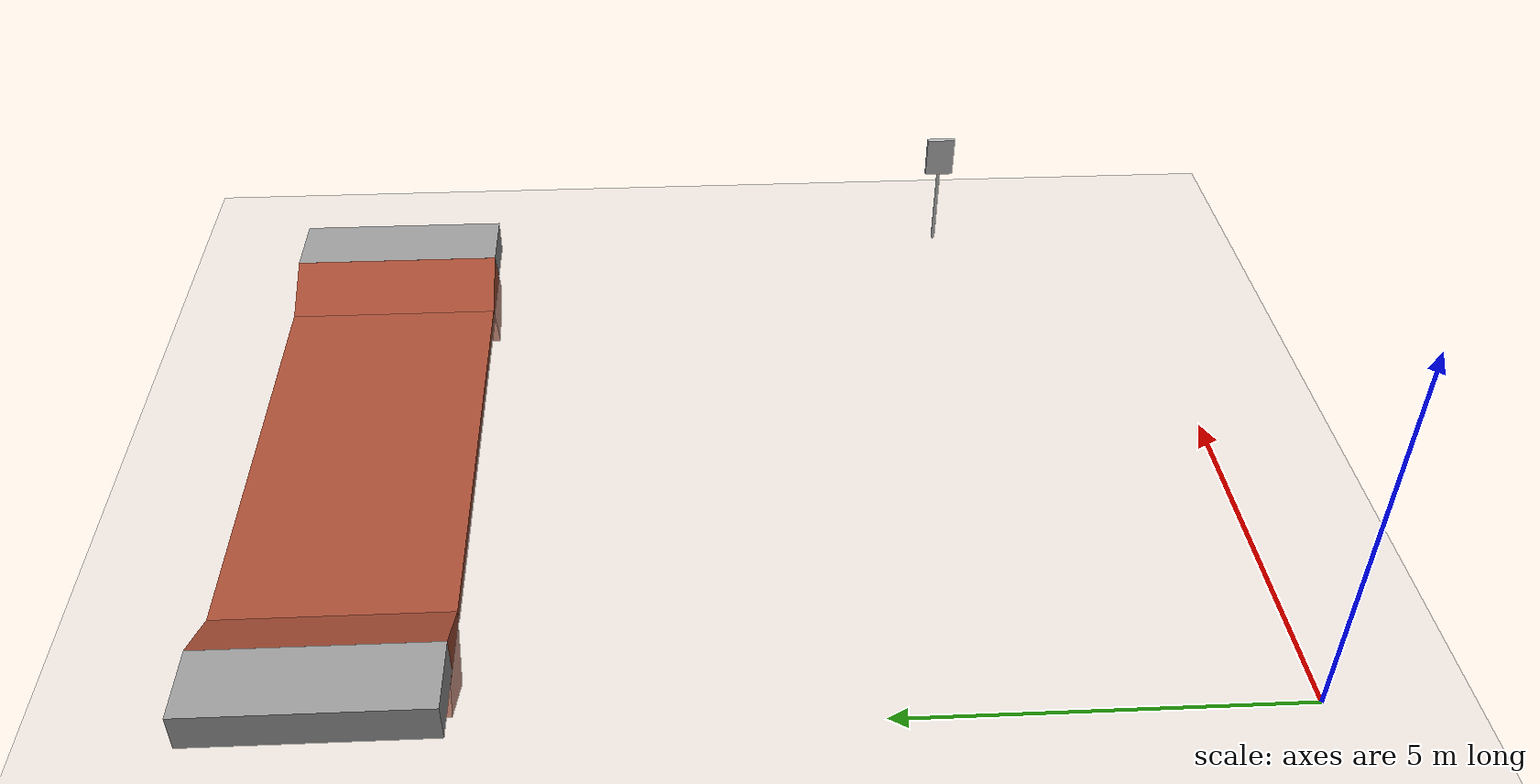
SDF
<sdf version="1.7">
 <world name="default">
  <model name="ground_plane">
   <static>1</static>
   <link name="link">
    <collision name="collision">
     <geometry><plane><normal>0 0 1</normal><size>100 100</size></plane></geometry>
     <surface><friction><ode><mu>100</mu><mu2>50</mu2></ode></friction></surface>
    </collision>
    <visual name="visual">
     <cast_shadows>0</cast_shadows>
     <geometry><plane><normal>0 0 1</normal><size>100 100</size></plane></geometry>
     <material>
      <script><uri>file://media/materials/scripts/gazebo.material</uri><name>Gazebo/Grey</name></script>
     </material>
    </visual>
   </link>
  </model>
  <model name="water">
   <pose>4.97378 11.4926 0 0 -0 0</pose>
   <static>1</static>
   <link name="water_main">
    <collision name="water_main_Collision"><geometry><box><size>6.284 3 0.2</size></box></geometry></collision>
    <visual name="water_main_Visual">
     <geometry><box><size>6.284 3 0.2</size></box></geometry>
     <material>
      <script><uri>file://media/materials/scripts/gazebo.material</uri><name>Gazebo/Bricks</name></script>
      <ambient>1 1 1 1</ambient>
     </material>
     <meta><layer>0</layer></meta>
    </visual>
   </link>
   <link name="water_out">
    <pose>-3.77 0 -0.129 0 -0 0</pose>
    <collision name="water_out_Collision">
     <geometry><box><size>0.946 3 0.946</size></box></geometry>
     <pose>0 0 0 0 0.4363 0</pose>
    </collision>
    <visual name="water_out_Visual">
     <pose>0 0 0 0 0.4363 0</pose>
     <geometry><box><size>0.946 3 0.946</size></box></geometry>
     <material>
      <script><uri>file://media/materials/scripts/gazebo.material</uri><name>Gazebo/Bricks</name></script>
      <ambient>1 1 1 1</ambient>
     </material>
    </visual>
   </link>
   <link name="water_in">
    <pose>3.77 0 -0.129 0 -0 0</pose>
    <collision name="water_in_Collision">
     <geometry><box><size>0.946 3 0.946</size></box></geometry>
     <pose>0 0 0 0 1.1344 0</pose>
    </collision>
    <visual name="water_in_Visual">
     <pose>0 0 0 0 1.1344 0</pose>
     <geometry><box><size>0.946 3 0.946</size></box></geometry>
     <material>
      <script><uri>file://media/materials/scripts/gazebo.material</uri><name>Gazebo/Bricks</name></script>
      <ambient>1 1 1 1</ambient>
     </material>
    </visual>
   </link>
   <link name="last_part">
    <pose>-4.5 0 0 0 -0 0</pose>
    <collision name="last_Collision">
     <geometry><box><size>1 3 0.5</size></box></geometry>
     <pose>0 0 0.25 0 -0 0</pose>
    </collision>
    <visual name="last_Visual">
     <pose>0 0 0.25 0 -0 0</pose>
     <geometry><box><size>1 3 0.5</size></box></geometry>
     <material>
      <script><uri>file://media/materials/scripts/gazebo.material</uri><name>Gazebo/Grey</name></script>
      <ambient>1 1 1 1</ambient>
     </material>
    </visual>
   </link>
   <link name="first_part">
    <pose>4.5 0 0 0 -0 0</pose>
    <collision name="first_part_Collision">
     <geometry><box><size>1 3 0.5</size></box></geometry>
     <pose>0 0 0.25 0 -0 0</pose>
    </collision>
    <visual name="first_part_Visual">
     <pose>0 0 0.25 0 -0 0</pose>
     <geometry><box><size>1 3 0.5</size></box></geometry>
     <material>
      <script><uri>file://media/materials/scripts/gazebo.material</uri><name>Gazebo/Grey</name></script>
      <ambient>1 1 1 1</ambient>
     </material>
    </visual>
   </link>
  </model>
  <model name="sign5">
   <static>1</static>
   <link name="link">
    <collision name="collision">
     <geometry><mesh><uri>model://sign_5/meshs/sign5.dae</uri><scale>1 1 1</scale></mesh></geometry>
    </collision>
    <visual name="visual">
     <geometry><mesh><uri>model://sign_5/meshs/sign5.dae</uri><scale>1 1 1</scale></mesh></geometry>
    </visual>
   </link>
   <pose>10 3 0 0 -0 0</pose>
  </model>
 </world>
</sdf>
